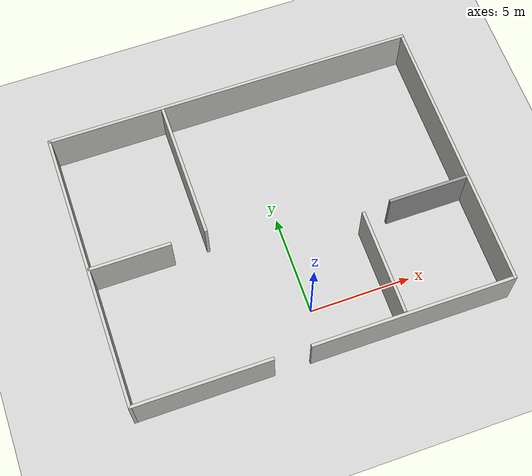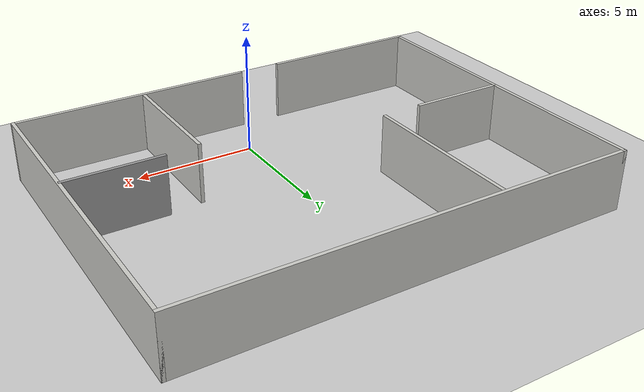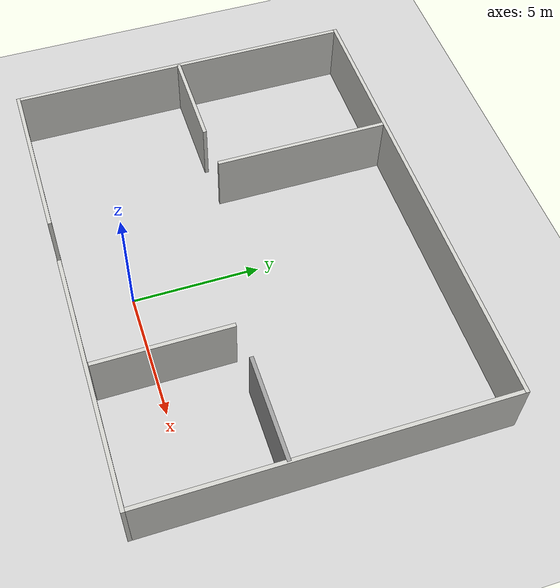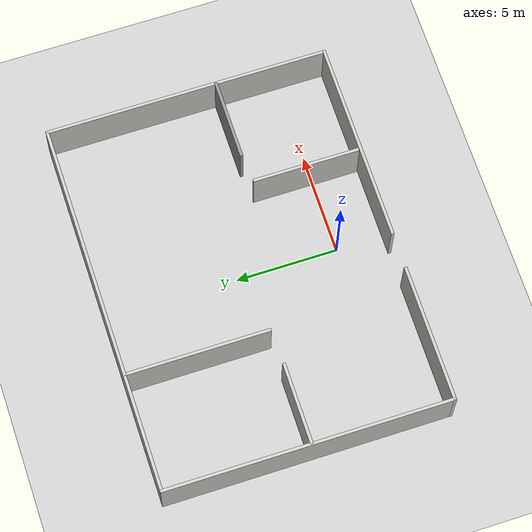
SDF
<sdf version='1.4'>
  <world name='nuglebot_world'>
    <!-- A global light source -->
    <include>
      <uri>model://sun</uri>
    </include>

    <!-- A ground plane -->
    <include>
      <uri>model://ground_plane</uri>
    </include>

    <physics type="ode">
      <real_time_update_rate>1000.0</real_time_update_rate>
      <max_step_size>0.001</max_step_size>
      <real_time_factor>1</real_time_factor>
      <ode>
        <solver>
          <type>quick</type>
          <iters>150</iters>
          <precon_iters>0</precon_iters>
          <sor>1.400000</sor>
          <use_dynamic_moi_rescaling>1</use_dynamic_moi_rescaling>
        </solver>
        <constraints>
          <cfm>0.00001</cfm>
          <erp>0.2</erp>
          <contact_max_correcting_vel>2000.000000</contact_max_correcting_vel>
          <contact_surface_layer>0.01000</contact_surface_layer>
        </constraints>
      </ode>
    </physics>

    <!-- Load world -->
    <include>
      <uri>model://nuglebot/models/nugle_room</uri>
    </include>

    <scene>
      <ambient>0.4 0.4 0.4 1</ambient>
      <background>0.7 0.7 0.7 1</background>
      <shadows>true</shadows>
    </scene>

    <gui fullscreen='0'>
      <camera name='user_camera'>
        <pose>0.8 0.0 12.0 0 1.5708 0</pose>
        <view_controller>orbit</view_controller>
      </camera>
    </gui>
  </world>
</sdf>

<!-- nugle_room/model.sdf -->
<sdf version='1.7'>
  <model name='nugle_room'>
    <pose>-0.165 4.585 0 0 -0 0</pose>
    <link name='Wall_0'>
      <collision name='Wall_0_Collision'>
        <geometry>
          <box>
            <size>6.75 0.15 2.5</size>
          </box>
        </geometry>
        <pose>0 0 1.25 0 -0 0</pose>
      </collision>
      <visual name='Wall_0_Visual'>
        <pose>0 0 1.25 0 -0 0</pose>
        <geometry>
          <box>
            <size>6.75 0.15 2.5</size>
          </box>
        </geometry>
        <material>
          <script>
            <uri>file://media/materials/scripts/gazebo.material</uri>
            <name>Gazebo/CeilingTiled</name>
          </script>
          <ambient>1 1 1 1</ambient>
        </material>
        <meta>
          <layer>0</layer>
        </meta>
      </visual>
      <pose>-5.875 -6.925 0 0 -0 3.14159</pose>
    </link>
    <link name='Wall_1'>
      <collision name='Wall_1_Collision'>
        <geometry>
          <box>
            <size>14 0.15 2.5</size>
          </box>
        </geometry>
        <pose>0 0 1.25 0 -0 0</pose>
      </collision>
      <visual name='Wall_1_Visual'>
        <pose>0 0 1.25 0 -0 0</pose>
        <geometry>
          <box>
            <size>14 0.15 2.5</size>
          </box>
        </geometry>
        <material>
          <script>
            <uri>file://media/materials/scripts/gazebo.material</uri>
            <name>Gazebo/CeilingTiled</name>
          </script>
          <ambient>1 1 1 1</ambient>
        </material>
        <meta>
          <layer>0</layer>
        </meta>
      </visual>
      <pose>-9.175 0 0 0 -0 1.5708</pose>
    </link>
    <link name='Wall_11'>
      <collision name='Wall_11_Collision'>
        <geometry>
          <box>
            <size>4 0.15 2.5</size>
          </box>
        </geometry>
        <pose>0 0 1.25 0 -0 0</pose>
      </collision>
      <visual name='Wall_11_Visual'>
        <pose>0 0 1.25 0 -0 0</pose>
        <geometry>
          <box>
            <size>4 0.15 2.5</size>
          </box>
        </geometry>
        <material>
          <script>
            <uri>file://media/materials/scripts/gazebo.material</uri>
            <name>Gazebo/CeilingTiled</name>
          </script>
          <ambient>1 1 1 1</ambient>
        </material>
        <meta>
          <layer>0</layer>
        </meta>
      </visual>
      <pose>-7.18492 -0.115206 0 0 -0 0</pose>
    </link>
    <link name='Wall_15'>
      <collision name='Wall_15_Collision'>
        <geometry>
          <box>
            <size>5.25 0.15 2.5</size>
          </box>
        </geometry>
        <pose>0 0 1.25 0 -0 0</pose>
      </collision>
      <visual name='Wall_15_Visual'>
        <pose>0 0 1.25 0 -0 0</pose>
        <geometry>
          <box>
            <size>5.25 0.15 2.5</size>
          </box>
        </geometry>
        <material>
          <script>
            <uri>file://media/materials/scripts/gazebo.material</uri>
            <name>Gazebo/CeilingTiled</name>
          </script>
          <ambient>1 1 1 1</ambient>
        </material>
        <meta>
          <layer>0</layer>
        </meta>
      </visual>
      <pose>3.8047 -4.20384 0 0 -0 1.5708</pose>
    </link>
    <link name='Wall_18'>
      <collision name='Wall_18_Collision'>
        <geometry>
          <box>
            <size>4 0.15 2.5</size>
          </box>
        </geometry>
        <pose>0 0 1.25 0 -0 0</pose>
      </collision>
      <visual name='Wall_18_Visual'>
        <pose>0 0 1.25 0 -0 0</pose>
        <geometry>
          <box>
            <size>4 0.15 2.5</size>
          </box>
        </geometry>
        <material>
          <script>
            <uri>file://media/materials/scripts/gazebo.material</uri>
            <name>Gazebo/Grey</name>
          </script>
          <ambient>1 1 1 1</ambient>
        </material>
        <meta>
          <layer>0</layer>
        </meta>
      </visual>
      <pose>7.188 -1.45816 0 0 -0 3.14159</pose>
    </link>
    <link name='Wall_2'>
      <collision name='Wall_2_Collision'>
        <geometry>
          <box>
            <size>18.5 0.15 2.5</size>
          </box>
        </geometry>
        <pose>0 0 1.25 0 -0 0</pose>
      </collision>
      <visual name='Wall_2_Visual'>
        <pose>0 0 1.25 0 -0 0</pose>
        <geometry>
          <box>
            <size>18.5 0.15 2.5</size>
          </box>
        </geometry>
        <material>
          <script>
            <uri>file://media/materials/scripts/gazebo.material</uri>
            <name>Gazebo/CeilingTiled</name>
          </script>
          <ambient>1 1 1 1</ambient>
        </material>
        <meta>
          <layer>0</layer>
        </meta>
      </visual>
      <pose>-0 6.925 0 0 -0 0</pose>
    </link>
    <link name='Wall_3'>
      <collision name='Wall_3_Collision'>
        <geometry>
          <box>
            <size>14 0.15 2.5</size>
          </box>
        </geometry>
        <pose>0 0 1.25 0 -0 0</pose>
      </collision>
      <visual name='Wall_3_Visual'>
        <pose>0 0 1.25 0 -0 0</pose>
        <geometry>
          <box>
            <size>14 0.15 2.5</size>
          </box>
        </geometry>
        <material>
          <script>
            <uri>file://media/materials/scripts/gazebo.material</uri>
            <name>Gazebo/CeilingTiled</name>
          </script>
          <ambient>1 1 1 1</ambient>
        </material>
        <meta>
          <layer>0</layer>
        </meta>
      </visual>
      <pose>9.175 0 0 0 -0 -1.5708</pose>
    </link>
    <link name='Wall_4'>
      <collision name='Wall_4_Collision'>
        <geometry>
          <box>
            <size>10 0.15 2.5</size>
          </box>
        </geometry>
        <pose>0 0 1.25 0 -0 0</pose>
      </collision>
      <visual name='Wall_4_Visual'>
        <pose>0 0 1.25 0 -0 0</pose>
        <geometry>
          <box>
            <size>10 0.15 2.5</size>
          </box>
        </geometry>
        <material>
          <script>
            <uri>file://media/materials/scripts/gazebo.material</uri>
            <name>Gazebo/CeilingTiled</name>
          </script>
          <ambient>1 1 1 1</ambient>
        </material>
        <meta>
          <layer>0</layer>
        </meta>
      </visual>
      <pose>4.25 -6.925 0 0 -0 3.14159</pose>
    </link>
    <link name='Wall_9'>
      <collision name='Wall_9_Collision'>
        <geometry>
          <box>
            <size>7 0.15 2.5</size>
          </box>
        </geometry>
        <pose>0 0 1.25 0 -0 0</pose>
      </collision>
      <visual name='Wall_9_Visual'>
        <pose>0 0 1.25 0 -0 0</pose>
        <geometry>
          <box>
            <size>7 0.15 2.5</size>
          </box>
        </geometry>
        <material>
          <script>
            <uri>file://media/materials/scripts/gazebo.material</uri>
            <name>Gazebo/CeilingTiled</name>
          </script>
          <ambient>1 1 1 1</ambient>
        </material>
        <meta>
          <layer>0</layer>
        </meta>
      </visual>
      <pose>-3.47324 3.42748 0 0 -0 -1.5708</pose>
    </link>
    <static>1</static>
  </model>
</sdf>
